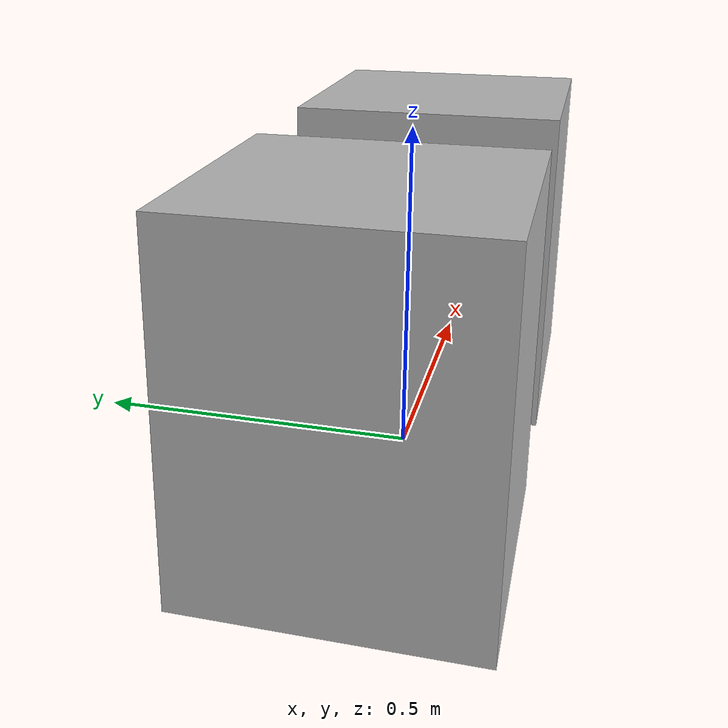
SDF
<?xml version="1.0" ?>
<sdf version="1.5">
  <model name="stand">

    <pose>0 0 0 0 0 0</pose>

    <static>true</static>
    <link name="link">
      <inertial>
        <mass>100</mass>
        <inertia>
          <ixx>1</ixx>
          <ixy>0</ixy>
          <ixz>0</ixz>
          <iyy>1</iyy>
          <iyz>0</iyz>
          <izz>1</izz>
        </inertia>
      </inertial>

      <collision name="collision">
        <geometry>
          <mesh>
            <uri>model://boundary/meshes/stand.stl</uri>
          </mesh>
        </geometry>
      </collision>
      <visual name="visual">
        <geometry>
          <mesh>
            <uri>model://boundary/meshes/stand.stl</uri>
          </mesh>
        </geometry>
      </visual>
    </link>
  </model>
</sdf>
